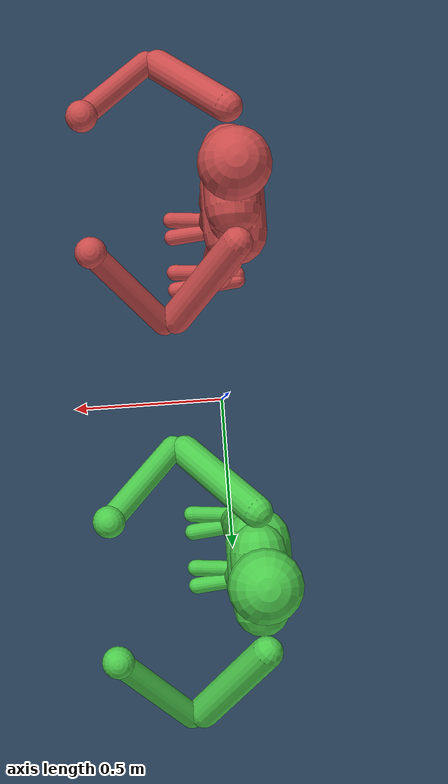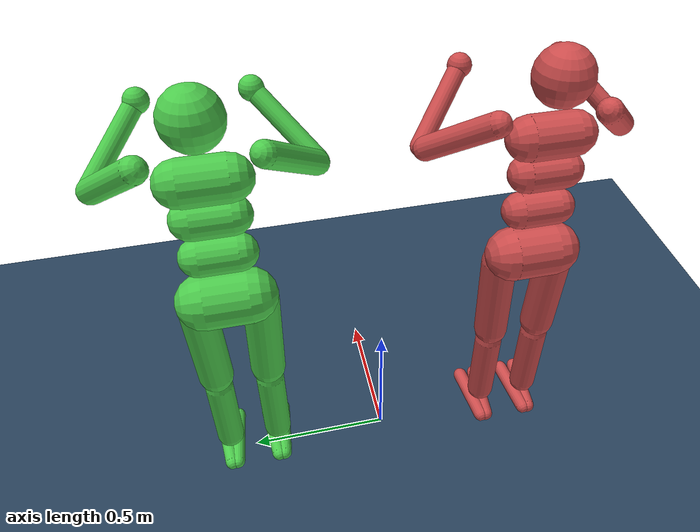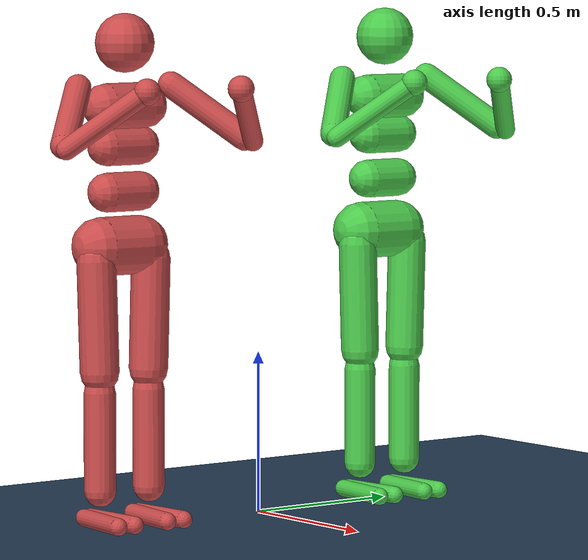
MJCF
<mujoco model="Humanoids Side by Side">
  <option timestep="0.005"/>
  <compiler autolimits="true"/>

  <visual>
    <map force="0.1" zfar="30"/>
    <rgba haze="0.15 0.25 0.35 1"/>
    <global offwidth="2560" offheight="1440"/>
  </visual>

  <asset>
    <texture type="skybox" builtin="gradient" rgb1=".3 .5 .7" rgb2="0 0 0" width="32" height="512"/>
    <texture name="grid" type="2d" builtin="checker" width="512" height="512" rgb1=".1 .2 .3" rgb2=".2 .3 .4"/>
    <material name="grid" texture="grid" texrepeat="1 1" texuniform="true" reflectance=".2"/>
    <material name="red" rgba="0.8 0.3 0.3 1"/>
    <material name="green" rgba="0.3 0.8 0.3 1"/>
    <material name="blue" rgba="0.3 0.3 0.8 1"/>
  </asset>

  <worldbody>
    <!-- Ground -->
    <geom name="ground" type="plane" size="50 50 0.1" material="grid" condim="3"/>

    <light directional="true" diffuse="0.6 0.6 0.6" specular="0.3 0.3 0.3" pos="0 0 4" dir="0 0 -1"/>
    <light name="spotlight" pos="0 -4 3" dir="0 0.5 -1" diffuse=".8 .8 .8" directional="true"/>

    <!-- Bottom humanoid 1 (Red) -->
    <body name="left_bot" pos="0 -0.5 1">
      <freejoint name="left_bot_root"/>
      <body name="left_bot_torso" pos="0 0 0.282">
        <geom name="left_bot_torso" fromto="0 -.07 0 0 .07 0" size=".07" type="capsule" material="red"/>
        <geom name="left_bot_waist_upper" fromto="-.01 -.06 -.12 -.01 .06 -.12" size=".06" type="capsule" material="red"/>

        <!-- Head -->
        <body name="left_bot_head" pos="0 0 .19">
          <geom name="left_bot_head" type="sphere" size=".09" material="red"/>
        </body>

        <!-- Right Arm -->
        <body name="left_bot_upper_arm_right" pos="0 -.17 .06">
          <joint name="left_bot_shoulder1_right" type="hinge" axis="2 1 1" range="-85 60"/>
          <joint name="left_bot_shoulder2_right" type="hinge" axis="0 -1 1" range="-85 60"/>
          <geom name="left_bot_upper_arm_right" fromto="0 0 0 .16 -.16 -.16" size=".04" type="capsule" material="red"/>
          <body name="left_bot_lower_arm_right" pos=".18 -.18 -.18">
            <joint name="left_bot_elbow_right" type="hinge" axis="0 -1 1" range="-100 50"/>
            <geom name="left_bot_lower_arm_right" fromto=".01 .01 .01 .17 .17 .17" size=".031" type="capsule" material="red"/>
            <body name="left_bot_hand_right" pos=".18 .18 .18">
              <geom name="left_bot_hand_right" type="sphere" size=".04" material="red"/>
            </body>
          </body>
        </body>

        <!-- Left Arm -->
        <body name="left_bot_upper_arm_left" pos="0 .17 .06">
          <joint name="left_bot_shoulder1_left" type="hinge" axis="-2 1 -1" range="-85 60"/>
          <joint name="left_bot_shoulder2_left" type="hinge" axis="0 -1 -1" range="-85 60"/>
          <geom name="left_bot_upper_arm_left" fromto="0 0 0 .16 .16 -.16" size=".04" type="capsule" material="red"/>
          <body name="left_bot_lower_arm_left" pos=".18 .18 -.18">
            <joint name="left_bot_elbow_left" type="hinge" axis="0 -1 -1" range="-100 50"/>
            <geom name="left_bot_lower_arm_left" fromto=".01 -.01 .01 .17 -.17 .17" size=".031" type="capsule" material="red"/>
            <body name="left_bot_hand_left" pos=".18 -.18 .18">
              <geom name="left_bot_hand_left" type="sphere" size=".04" material="red"/>
            </body>
          </body>
        </body>

        <!-- Lower Body -->
        <body name="left_bot_waist_lower" pos="-.01 0 -.26">
          <geom name="left_bot_waist_lower" fromto="0 -.06 0 0 .06 0" size=".06" type="capsule" material="red"/>
          <joint name="left_bot_abdomen_z" pos="0 0 .065" axis="0 0 1" range="-45 45"/>
          <joint name="left_bot_abdomen_y" pos="0 0 .065" axis="0 1 0" range="-75 30"/>
          <body name="left_bot_pelvis" pos="0 0 -.165">
            <joint name="left_bot_abdomen_x" pos="0 0 .1" axis="1 0 0" range="-35 35"/>
            <geom name="left_bot_butt" fromto="-.02 -.07 0 -.02 .07 0" size=".09" type="capsule" material="red"/>

            <!-- Right Leg -->
            <body name="left_bot_thigh_right" pos="0 -.1 -.04">
              <joint name="left_bot_hip_x_right" type="hinge" axis="1 0 0" range="-30 10"/>
              <joint name="left_bot_hip_z_right" type="hinge" axis="0 0 1" range="-60 35"/>
              <joint name="left_bot_hip_y_right" type="hinge" axis="0 1 0" range="-150 20"/>
              <geom name="left_bot_thigh_right" fromto="0 0 0 0 .01 -.34" size=".06" type="capsule" material="red"/>
              <body name="left_bot_shin_right" pos="0 .01 -.4">
                <joint name="left_bot_knee_right" type="hinge" axis="0 -1 0" range="-160 2"/>
                <geom name="left_bot_shin_right" fromto="0 0 0 0 0 -.3" size=".049" type="capsule" material="red"/>
                <body name="left_bot_foot_right" pos="0 0 -.39">
                  <joint name="left_bot_ankle_y_right" type="hinge" pos="0 0 .08" axis="0 1 0" range="-50 50"/>
                  <joint name="left_bot_ankle_x_right" type="hinge" pos="0 0 .04" axis="1 0 .5" range="-50 50"/>
                  <geom name="left_bot_foot1_right" fromto="-.07 -.01 0 .14 -.03 0" size=".027" type="capsule" material="red"/>
                  <geom name="left_bot_foot2_right" fromto="-.07 .01 0 .14 .03 0" size=".027" type="capsule" material="red"/>
                </body>
              </body>
            </body>

            <!-- Left Leg -->
            <body name="left_bot_thigh_left" pos="0 .1 -.04">
              <joint name="left_bot_hip_x_left" type="hinge" axis="-1 0 0" range="-30 10"/>
              <joint name="left_bot_hip_z_left" type="hinge" axis="0 0 -1" range="-60 35"/>
              <joint name="left_bot_hip_y_left" type="hinge" axis="0 1 0" range="-150 20"/>
              <geom name="left_bot_thigh_left" fromto="0 0 0 0 -.01 -.34" size=".06" type="capsule" material="red"/>
              <body name="left_bot_shin_left" pos="0 -.01 -.4">
                <joint name="left_bot_knee_left" type="hinge" axis="0 -1 0" range="-160 2"/>
                <geom name="left_bot_shin_left" fromto="0 0 0 0 0 -.3" size=".049" type="capsule" material="red"/>
                <body name="left_bot_foot_left" pos="0 0 -.39">
                  <joint name="left_bot_ankle_y_left" type="hinge" pos="0 0 .08" axis="0 1 0" range="-50 50"/>
                  <joint name="left_bot_ankle_x_left" type="hinge" pos="0 0 .04" axis="-1 0 -.5" range="-50 50"/>
                  <geom name="left_bot_foot1_left" fromto="-.07 -.01 0 .14 -.03 0" size=".027" type="capsule" material="red"/>
                  <geom name="left_bot_foot2_left" fromto="-.07 .01 0 .14 .03 0" size=".027" type="capsule" material="red"/>
                </body>
              </body>
            </body>
          </body>
        </body>
      </body>
    </body>

    <!-- Bottom humanoid 2 (Green) -->
    <body name="right_bot" pos="0 0.5 1">
      <freejoint name="right_bot_root"/>
      <body name="right_bot_torso" pos="0 0 0.282">
        <geom name="right_bot_torso" fromto="0 -.07 0 0 .07 0" size=".07" type="capsule" material="green"/>
        <geom name="right_bot_waist_upper" fromto="-.01 -.06 -.12 -.01 .06 -.12" size=".06" type="capsule" material="green"/>

        <!-- Head -->
        <body name="right_bot_head" pos="0 0 .19">
          <geom name="right_bot_head" type="sphere" size=".09" material="green"/>
        </body>

        <!-- Right Arm -->
        <body name="right_bot_upper_arm_right" pos="0 -.17 .06">
          <joint name="right_bot_shoulder1_right" type="hinge" axis="2 1 1" range="-85 60"/>
          <joint name="right_bot_shoulder2_right" type="hinge" axis="0 -1 1" range="-85 60"/>
          <geom name="right_bot_upper_arm_right" fromto="0 0 0 .16 -.16 -.16" size=".04" type="capsule" material="green"/>
          <body name="right_bot_lower_arm_right" pos=".18 -.18 -.18">
            <joint name="right_bot_elbow_right" type="hinge" axis="0 -1 1" range="-100 50"/>
            <geom name="right_bot_lower_arm_right" fromto=".01 .01 .01 .17 .17 .17" size=".031" type="capsule" material="green"/>
            <body name="right_bot_hand_right" pos=".18 .18 .18">
              <geom name="right_bot_hand_right" type="sphere" size=".04" material="green"/>
            </body>
          </body>
        </body>

        <!-- Left Arm -->
        <body name="right_bot_upper_arm_left" pos="0 .17 .06">
          <joint name="right_bot_shoulder1_left" type="hinge" axis="-2 1 -1" range="-85 60"/>
          <joint name="right_bot_shoulder2_left" type="hinge" axis="0 -1 -1" range="-85 60"/>
          <geom name="right_bot_upper_arm_left" fromto="0 0 0 .16 .16 -.16" size=".04" type="capsule" material="green"/>
          <body name="right_bot_lower_arm_left" pos=".18 .18 -.18">
            <joint name="right_bot_elbow_left" type="hinge" axis="0 -1 -1" range="-100 50"/>
            <geom name="right_bot_lower_arm_left" fromto=".01 -.01 .01 .17 -.17 .17" size=".031" type="capsule" material="green"/>
            <body name="right_bot_hand_left" pos=".18 -.18 .18">
              <geom name="right_bot_hand_left" type="sphere" size=".04" material="green"/>
            </body>
          </body>
        </body>

        <!-- Lower Body -->
        <body name="right_bot_waist_lower" pos="-.01 0 -.26">
          <geom name="right_bot_waist_lower" fromto="0 -.06 0 0 .06 0" size=".06" type="capsule" material="green"/>
          <joint name="right_bot_abdomen_z" pos="0 0 .065" axis="0 0 1" range="-45 45"/>
          <joint name="right_bot_abdomen_y" pos="0 0 .065" axis="0 1 0" range="-75 30"/>
          <body name="right_bot_pelvis" pos="0 0 -.165">
            <joint name="right_bot_abdomen_x" pos="0 0 .1" axis="1 0 0" range="-35 35"/>
            <geom name="right_bot_butt" fromto="-.02 -.07 0 -.02 .07 0" size=".09" type="capsule" material="green"/>

            <!-- Right Leg -->
            <body name="right_bot_thigh_right" pos="0 -.1 -.04">
              <joint name="right_bot_hip_x_right" type="hinge" axis="1 0 0" range="-30 10"/>
              <joint name="right_bot_hip_z_right" type="hinge" axis="0 0 1" range="-60 35"/>
              <joint name="right_bot_hip_y_right" type="hinge" axis="0 1 0" range="-150 20"/>
              <geom name="right_bot_thigh_right" fromto="0 0 0 0 .01 -.34" size=".06" type="capsule" material="green"/>
              <body name="right_bot_shin_right" pos="0 .01 -.4">
                <joint name="right_bot_knee_right" type="hinge" axis="0 -1 0" range="-160 2"/>
                <geom name="right_bot_shin_right" fromto="0 0 0 0 0 -.3" size=".049" type="capsule" material="green"/>
                <body name="right_bot_foot_right" pos="0 0 -.39">
                  <joint name="right_bot_ankle_y_right" type="hinge" pos="0 0 .08" axis="0 1 0" range="-50 50"/>
                  <joint name="right_bot_ankle_x_right" type="hinge" pos="0 0 .04" axis="1 0 .5" range="-50 50"/>
                  <geom name="right_bot_foot1_right" fromto="-.07 -.01 0 .14 -.03 0" size=".027" type="capsule" material="green"/>
                  <geom name="right_bot_foot2_right" fromto="-.07 .01 0 .14 .03 0" size=".027" type="capsule" material="green"/>
                </body>
              </body>
            </body>

            <!-- Left Leg -->
            <body name="right_bot_thigh_left" pos="0 .1 -.04">
              <joint name="right_bot_hip_x_left" type="hinge" axis="-1 0 0" range="-30 10"/>
              <joint name="right_bot_hip_z_left" type="hinge" axis="0 0 -1" range="-60 35"/>
              <joint name="right_bot_hip_y_left" type="hinge" axis="0 1 0" range="-150 20"/>
              <geom name="right_bot_thigh_left" fromto="0 0 0 0 -.01 -.34" size=".06" type="capsule" material="green"/>
              <body name="right_bot_shin_left" pos="0 -.01 -.4">
                <joint name="right_bot_knee_left" type="hinge" axis="0 -1 0" range="-160 2"/>
                <geom name="right_bot_shin_left" fromto="0 0 0 0 0 -.3" size=".049" type="capsule" material="green"/>
                <body name="right_bot_foot_left" pos="0 0 -.39">
                  <joint name="right_bot_ankle_y_left" type="hinge" pos="0 0 .08" axis="0 1 0" range="-50 50"/>
                  <joint name="right_bot_ankle_x_left" type="hinge" pos="0 0 .04" axis="-1 0 -.5" range="-50 50"/>
                  <geom name="right_bot_foot1_left" fromto="-.07 -.01 0 .14 -.03 0" size=".027" type="capsule" material="green"/>
                  <geom name="right_bot_foot2_left" fromto="-.07 .01 0 .14 .03 0" size=".027" type="capsule" material="green"/>
                </body>
              </body>
            </body>
          </body>
        </body>
      </body>
    </body>
  </worldbody>

  <equality>
    <!-- Weld top robot's feet to base robots' shoulders -->
    <weld name="weld_right_left" body1="right_bot_hand_right" body2="left_bot_hand_left"
      anchor="0 0 1.2" solref="0.01 1" solimp="0.9 0.95 0.001"/>

  </equality>

  <!-- COMPLETE ACTUATORS FOR ALL JOINTS -->
  <actuator>
    <!-- Base Humanoid 1 (Red) Actuators -->
    <position name="left_bot_abdomen_y" joint="left_bot_abdomen_y" kp="100"/>
    <position name="left_bot_abdomen_z" joint="left_bot_abdomen_z" kp="100"/>
    <position name="left_bot_abdomen_x" joint="left_bot_abdomen_x" kp="100"/>
    <position name="left_bot_hip_x_right" joint="left_bot_hip_x_right" kp="100"/>
    <position name="left_bot_hip_z_right" joint="left_bot_hip_z_right" kp="100"/>
    <position name="left_bot_hip_y_right" joint="left_bot_hip_y_right" kp="100"/>
    <position name="left_bot_knee_right" joint="left_bot_knee_right" kp="80"/>
    <position name="left_bot_ankle_x_right" joint="left_bot_ankle_x_right" kp="50"/>
    <position name="left_bot_ankle_y_right" joint="left_bot_ankle_y_right" kp="50"/>
    <position name="left_bot_hip_x_left" joint="left_bot_hip_x_left" kp="100"/>
    <position name="left_bot_hip_z_left" joint="left_bot_hip_z_left" kp="100"/>
    <position name="left_bot_hip_y_left" joint="left_bot_hip_y_left" kp="100"/>
    <position name="left_bot_knee_left" joint="left_bot_knee_left" kp="80"/>
    <position name="left_bot_ankle_x_left" joint="left_bot_ankle_x_left" kp="50"/>
    <position name="left_bot_ankle_y_left" joint="left_bot_ankle_y_left" kp="50"/>
    <position name="left_bot_shoulder1_right" joint="left_bot_shoulder1_right" kp="50"/>
    <position name="left_bot_shoulder2_right" joint="left_bot_shoulder2_right" kp="50"/>
    <position name="left_bot_elbow_right" joint="left_bot_elbow_right" kp="50"/>
    <position name="left_bot_shoulder1_left" joint="left_bot_shoulder1_left" kp="50"/>
    <position name="left_bot_shoulder2_left" joint="left_bot_shoulder2_left" kp="50"/>
    <position name="left_bot_elbow_left" joint="left_bot_elbow_left" kp="50"/>

    <!-- Base Humanoid 2 (Green) Actuators -->
    <position name="right_bot_abdomen_y" joint="right_bot_abdomen_y" kp="100"/>
    <position name="right_bot_abdomen_z" joint="right_bot_abdomen_z" kp="100"/>
    <position name="right_bot_abdomen_x" joint="right_bot_abdomen_x" kp="100"/>
    <position name="right_bot_hip_x_right" joint="right_bot_hip_x_right" kp="100"/>
    <position name="right_bot_hip_z_right" joint="right_bot_hip_z_right" kp="100"/>
    <position name="right_bot_hip_y_right" joint="right_bot_hip_y_right" kp="100"/>
    <position name="right_bot_knee_right" joint="right_bot_knee_right" kp="80"/>
    <position name="right_bot_ankle_x_right" joint="right_bot_ankle_x_right" kp="50"/>
    <position name="right_bot_ankle_y_right" joint="right_bot_ankle_y_right" kp="50"/>
    <position name="right_bot_hip_x_left" joint="right_bot_hip_x_left" kp="100"/>
    <position name="right_bot_hip_z_left" joint="right_bot_hip_z_left" kp="100"/>
    <position name="right_bot_hip_y_left" joint="right_bot_hip_y_left" kp="100"/>
    <position name="right_bot_knee_left" joint="right_bot_knee_left" kp="80"/>
    <position name="right_bot_ankle_x_left" joint="right_bot_ankle_x_left" kp="50"/>
    <position name="right_bot_ankle_y_left" joint="right_bot_ankle_y_left" kp="50"/>
    <position name="right_bot_shoulder1_right" joint="right_bot_shoulder1_right" kp="50"/>
    <position name="right_bot_shoulder2_right" joint="right_bot_shoulder2_right" kp="50"/>
    <position name="right_bot_elbow_right" joint="right_bot_elbow_right" kp="50"/>
    <position name="right_bot_shoulder1_left" joint="right_bot_shoulder1_left" kp="50"/>
    <position name="right_bot_shoulder2_left" joint="right_bot_shoulder2_left" kp="50"/>

  </actuator>

</mujoco>
